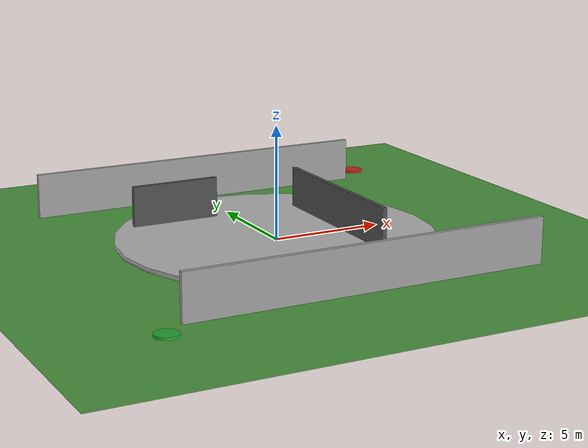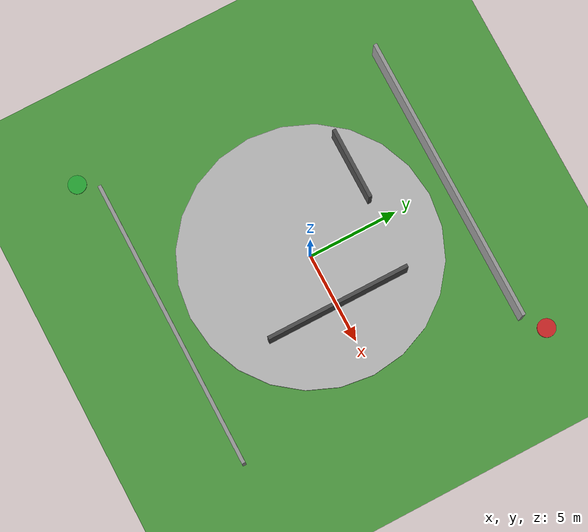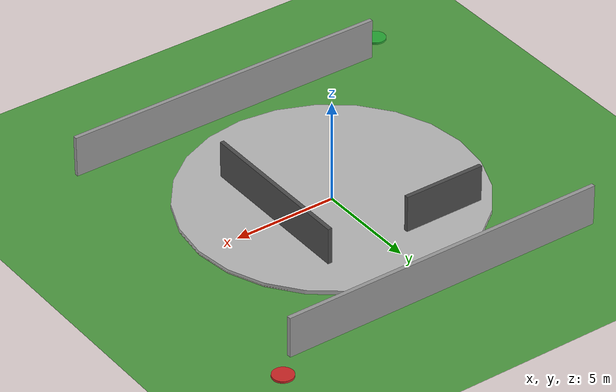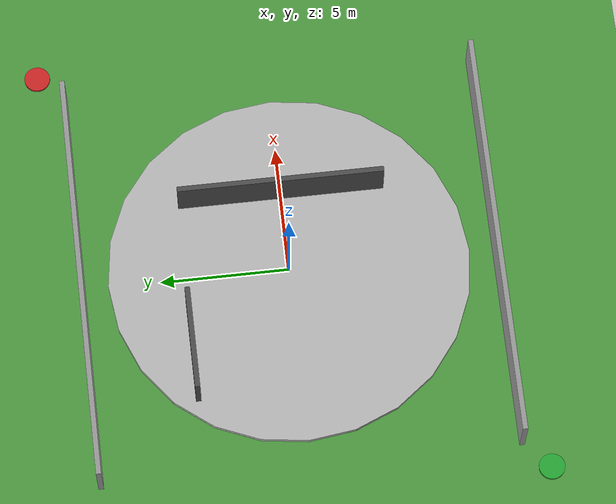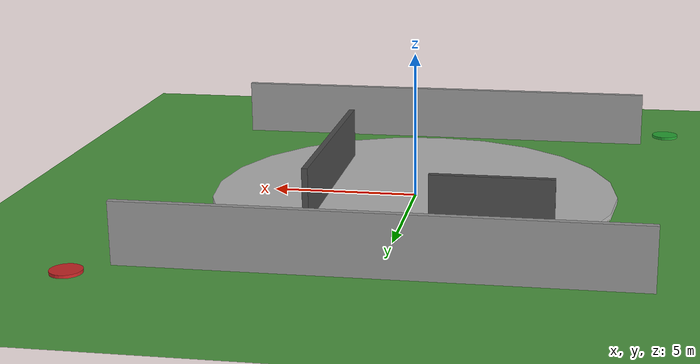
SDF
<?xml version="1.0" encoding="UTF-8" ?>
<sdf version="1.4">
  <world name="drone_navigation_20m">
    <!-- Environment Settings -->
    <wind>
      <linear_velocity>1.0 0.5 0.0</linear_velocity>
      <enable_wind>true</enable_wind>
    </wind>
    <scene>
      <ambient>0.5 0.5 0.5 1</ambient>
      <background>0.5 0.5 0.5 1</background>
      <shadows>false</shadows>
    </scene>
    <physics type="ode">
      <gravity>0 0 -9.81</gravity>
      <max_step_size>0.001</max_step_size>
    </physics>

    <!-- Lighting -->
    <light type="directional" name="sun">
      <pose>0 5 5 0 0 0</pose>
      <diffuse>1 1 1 1</diffuse>
      <specular>1 1 1 1</specular>
      <direction>0.1 0.1 -1</direction>
    </light>

    <!-- Base Terrain (20x20m) -->
    <model name="ground_plane">
      <static>true</static>
      <link name="link">
        <collision name="collision">
          <geometry>
            <plane><normal>0 0 1</normal><size>20 20</size></plane>
          </geometry>
          <surface><friction><ode><mu>100</mu></ode></friction></surface>
        </collision>
        <visual name="visual">
          <geometry>
            <plane><normal>0 0 1</normal><size>20 20</size></plane>
          </geometry>
          <material>
            <script>
              <name>Gazebo/Grass</name>
              <uri>file://media/materials/scripts/gazebo.material</uri>
            </script>
          </material>
        </visual>
      </link>
    </model>

    <!-- Uneven Terrain Ring (High Energy Zone) -->
    <model name="uneven_terrain">
      <static>true</static>
      <pose>0 0 0.1 0 0 0</pose>
      <link name="link">
        <collision name="collision">
          <geometry>
            <cylinder><radius>7</radius><length>0.2</length></cylinder>
          </geometry>
          <surface><friction><ode><mu>200</mu></ode></friction></surface>
        </collision>
        <visual name="visual">
          <geometry>
            <cylinder><radius>7</radius><length>0.2</length></cylinder>
          </geometry>
          <material>
            <script>
              <name>Gazebo/Rough</name>
              <uri>file://media/materials/scripts/gazebo.material</uri>
            </script>
          </material>
        </visual>
      </link>
    </model>

    <!-- Maze Obstacles (Scaled Down) -->
    <!-- Outer Walls -->
    <model name="wall_north">
      <static>true</static>
      <pose>0 8 1 0 0 0</pose>
      <link name="link">
        <collision name="collision">
          <geometry><box><size>16 0.2 2</size></box></geometry>
        </collision>
        <visual name="visual">
          <geometry><box><size>16 0.2 2</size></box></geometry>
          <material><script><name>Gazebo/Grey</name></script></material>
        </visual>
      </link>
    </model>

    <model name="wall_south">
      <static>true</static>
      <pose>0 -8 1 0 0 0</pose>
      <link name="link">
        <collision name="collision">
          <geometry><box><size>16 0.2 2</size></box></geometry>
        </collision>
        <visual name="visual">
          <geometry><box><size>16 0.2 2</size></box></geometry>
          <material><script><name>Gazebo/Grey</name></script></material>
        </visual>
      </link>
    </model>

    <!-- Inner Maze -->
    <model name="obstacle_1">
      <static>true</static>
      <pose>3 0 1 0 0 1.57</pose>
      <link name="link">
        <collision name="collision">
          <geometry><box><size>8 0.2 2</size></box></geometry>
        </collision>
        <visual name="visual">
          <geometry><box><size>8 0.2 2</size></box></geometry>
          <material><script><name>Gazebo/DarkGrey</name></script></material>
        </visual>
      </link>
    </model>

    <model name="obstacle_2">
      <static>true</static>
      <pose>-3 4 1 0 0 0</pose>
      <link name="link">
        <collision name="collision">
          <geometry><box><size>4 0.2 2</size></box></geometry>
        </collision>
        <visual name="visual">
          <geometry><box><size>4 0.2 2</size></box></geometry>
          <material><script><name>Gazebo/DarkGrey</name></script></material>
        </visual>
      </link>
    </model>

    <!-- Start/Goal Markers -->
    <model name="start">
      <static>true</static>
      <pose>-9 -9 0.1 0 0 0</pose>
      <link name="link">
        <visual name="visual">
          <geometry><cylinder><radius>0.5</radius><length>0.1</length></cylinder></geometry>
          <material><script><name>Gazebo/Green</name></script></material>
        </visual>
      </link>
    </model>

    <model name="goal">
      <static>true</static>
      <pose>9 9 0.1 0 0 0</pose>
      <link name="link">
        <visual name="visual">
          <geometry><cylinder><radius>0.5</radius><length>0.1</length></cylinder></geometry>
          <material><script><name>Gazebo/Red</name></script></material>
        </visual>
      </link>
    </model>

    <!-- Energy Zone Visual -->
    <model name="energy_zone">
      <static>true</static>
      <pose>0 0 0.05 0 0 0</pose>
      <link name="link">
        <visual name="visual">
          <geometry><cylinder><radius>7</radius><length>0.01</length></cylinder></geometry>
          <material>
            <script><name>Gazebo/YellowTransparent</name></script>
            <ambient>1 1 0 0.3</ambient>
          </material>
        </visual>
      </link>
    </model>
  </world>
</sdf>
